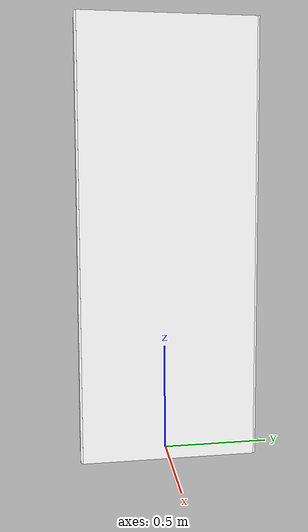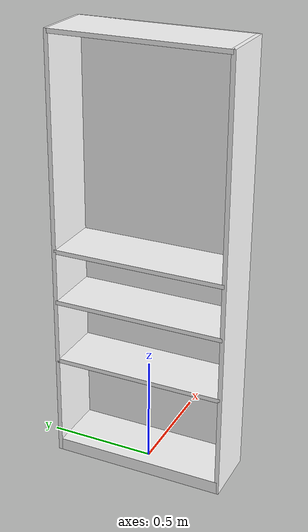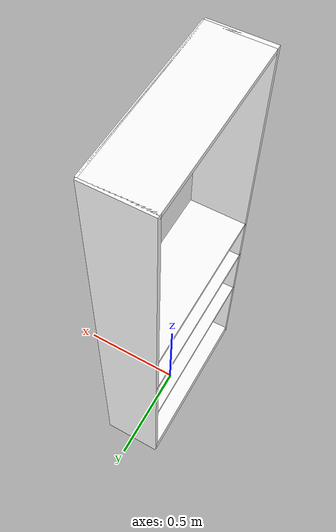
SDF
<?xml version="1.0" ?>
<sdf version="1.8">
  <model name="book_shelf">
    <link name="link">
      <inertial>
        <mass>1.0</mass>
      </inertial>

      <collision name="back">
        <pose>0.005 0.0 1.01 0.0 0.0 0.0</pose>
        <geometry>
          <box>
            <size>0.01 0.8 2.02</size>
          </box>
        </geometry>
      </collision>

      <visual name="back_v">
        <pose>0.14 0.0 1.01 0.0 0.0 0.0</pose>
        <geometry>
          <box>
            <size>0.01 0.8 2.02</size>
          </box>
        </geometry>

        <material>
          <ambient>1 1 1 1</ambient>
          <diffuse>1 1 1 1</diffuse>

        </material>
      </visual>

      <collision name="left_side">
        <pose>0.0 0.4 1.01 0.0 0.0 0.0</pose>
        <geometry>
          <box>
            <size>0.28 0.02 2.02</size>
          </box>
        </geometry>
      </collision>

      <visual name="left_side_v">
        <pose>0.0 0.4 1.01 0.0 0.0 0.0</pose>
        <geometry>
          <box>
            <size>0.28 0.02 2.02</size>
          </box>
        </geometry>

        <material>
          <ambient>1 1 1 1</ambient>
          <diffuse>1 1 1 1</diffuse>

        </material>
      </visual>

      <collision name="right_side">
        <pose>0.0 -0.4 1.01 0.0 0.0 0.0</pose>
        <geometry>
          <box>
            <size>0.28 0.02 2.02</size>
          </box>
        </geometry>
      </collision>

      <visual name="right_side_v">
        <pose>0.0 -0.4 1.01 0 0 0</pose>
        <geometry>
          <box>
            <size>0.28 0.02 2.02</size>
          </box>
        </geometry>

        <material>
          <ambient>1 1 1 1</ambient>
          <diffuse>1 1 1 1</diffuse>

        </material>
      </visual>

      <collision name="bottom">
        <pose>0.0 0.0 0.03 0.0 0.0 0.0</pose>
        <geometry>
          <box>
            <size>0.28 0.8 0.06</size>
          </box>
        </geometry>
      </collision>

      <visual name="bottom_v">
        <pose>0.0 0.0 0.03 0.0 0.0 0.0</pose>
        <geometry>
          <box>
            <size>0.28 0.8 0.06</size>
          </box>
        </geometry>

        <material>
          <ambient>1 1 1 1</ambient>
          <diffuse>1 1 1 1</diffuse>

        </material>
      </visual>

      <collision name="top">
        <pose>0.0 0.0 2.01 0.0 0.0 0.0</pose>
        <geometry>
          <box>
            <size>0.28 0.8 0.02</size>
          </box>
        </geometry>
      </collision>

      <visual name="top_v">
        <pose>0.0 0.0 2.01 0.0 0.0 0.0</pose>
        <geometry>
          <box>
            <size>0.28 0.8 0.02</size>
          </box>
        </geometry>

        <material>
          <ambient>1 1 1 1</ambient>
          <diffuse>1 1 1 1</diffuse>

        </material>
      </visual>

      <collision name="slit1">
        <pose>0.0 0.0 0.49 0.0 0.0 0.0</pose>
        <geometry>
          <box>
            <size>0.28 0.8 0.02</size>
          </box>
        </geometry>
      </collision>

      <visual name="slit1_v">
        <pose>0.0 0.0 0.49 0.0 0.0 0.0</pose>
        <geometry>
          <box>
            <size>0.28 0.8 0.02</size>
          </box>
        </geometry>

        <material>
          <ambient>1 1 1 1</ambient>
          <diffuse>1 1 1 1</diffuse>

        </material>
      </visual>

      <collision name="slit2">
        <pose>0.0 0.0 0.79 0.0 0.0 0.0</pose>
        <geometry>
          <box>
            <size>0.28 0.8 0.02</size>
          </box>
        </geometry>
      </collision>

      <visual name="slit2_v">
        <pose>0.0 0.0 0.79 0.0 0.0 0.0</pose>
        <geometry>
          <box>
            <size>0.28 0.8 0.02</size>
          </box>
        </geometry>

        <material>
          <ambient>1 1 1 1</ambient>
          <diffuse>1 1 1 1</diffuse>

        </material>
      </visual>

      <collision name="slit3">
        <pose>0.0 0.0 1.04 0.0 0.0 0.0</pose>
        <geometry>
          <box>
            <size>0.28 0.8 0.02</size>
          </box>
        </geometry>
      </collision>

      <visual name="slit3_v">
        <pose>0.0 0.0 1.04 0.0 0.0 0.0</pose>
        <geometry>
          <box>
            <size>0.28 0.8 0.02</size>
          </box>
        </geometry>

        <material>
          <ambient>1 1 1 1</ambient>
          <diffuse>1 1 1 1</diffuse>

        </material>
      </visual>
    </link>
  </model>
</sdf>
